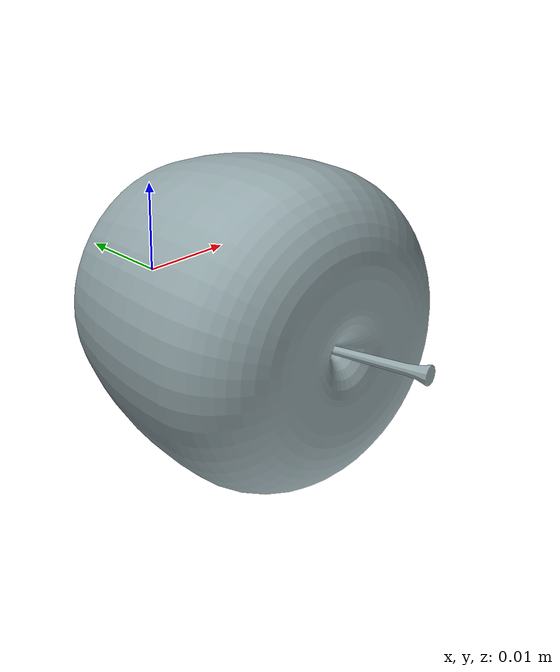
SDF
<?xml version="1.0"?>
<sdf version="1.7">
  <model name="apple">
    <link name="apple">
      <inertial>
        <pose>9.7075e-07 -2.819e-11 0.015792 0 0 0</pose>
        <mass>0.021647</mass>
        <inertia>
          <ixx>2.6216e-06</ixx>
          <ixy>-5.4812e-18</ixy>
          <ixz>-3.973e-10</ixz>
          <iyy>2.6217e-06</iyy>
          <iyz>9.9913e-15</iyz>
          <izz>2.6359e-06</izz>
        </inertia>
      </inertial>
      <visual name="apple_visual">
        <pose>0 0 0 0 0 0</pose>
        <geometry>
          <mesh>
            <uri>models://deli_world/apple/meshes/apple.STL</uri>
          </mesh>
        </geometry>
        <material>
          <ambient>0.59216 0.66667 0.68235 1</ambient>
          <diffuse>0.59216 0.66667 0.68235 1</diffuse>
          <specular>0 0 0 1</specular>
        </material>
      </visual>
      <collision name="apple_collision">
        <pose>0 0 0 0 0 0</pose>
        <geometry>
          <mesh>
            <uri>models://deli_world/apple/meshes/apple.STL</uri>
          </mesh>
        </geometry>
      </collision>
    </link>
  </model>
</sdf>
